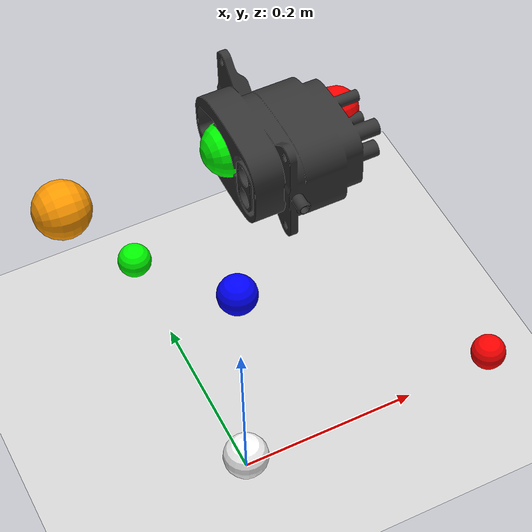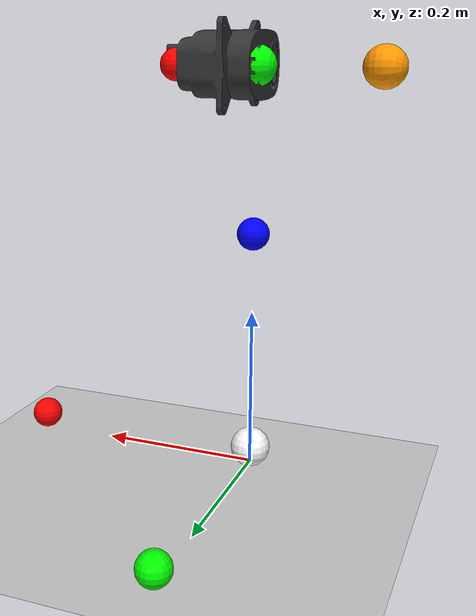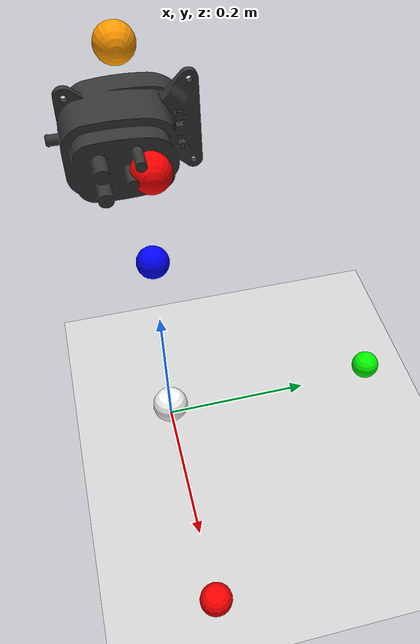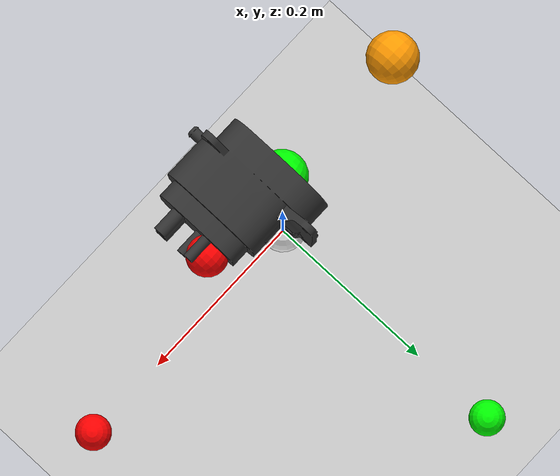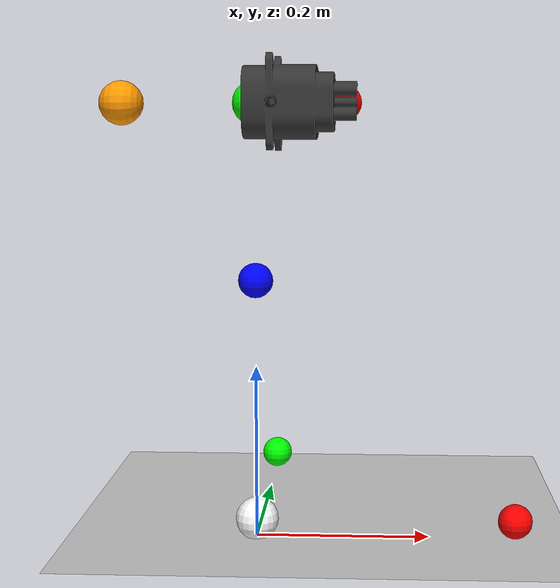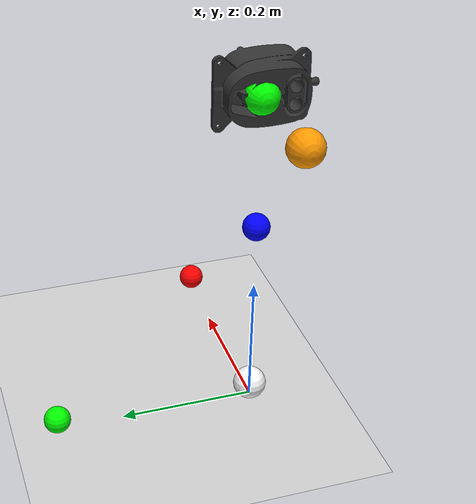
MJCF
<mujoco model="port_only_scene">
    <compiler angle="degree"/>

    <option timestep="0.002" gravity="0 0 -9.81"/>

    <asset>
        <mesh name="charge_port_mesh" file="assets/Port.obj" scale="0.001 0.001 0.001"/>
    </asset>

    <visual>
        <headlight
            ambient="0.3 0.3 0.3"
            diffuse="0.6 0.6 0.6"
            specular="0.1 0.1 0.1"
        />
    </visual>

    <worldbody>
        <light
            name="main_light"
            pos="0 0 3"
            dir="0 0 -1"
            directional="true"
            diffuse="0.8 0.8 0.8"
            ambient="0.2 0.2 0.2"
        />

        <geom
            name="floor"
            type="plane"
            pos="0 0 0"
            size="3 3 0.1"
            rgba="0.8 0.8 0.8 1"
        />

        <!-- 월드 좌표축 확인용 -->
        <site name="world_origin"
              pos="0 0 0.02"
              size="0.025"
              rgba="1 1 1 1"/>

        <site name="world_x"
              pos="0.3 0 0.02"
              size="0.02"
              rgba="1 0 0 1"/>

        <site name="world_y"
              pos="0 0.3 0.02"
              size="0.02"
              rgba="0 1 0 1"/>

        <site name="world_z"
              pos="0 0 0.3"
              size="0.02"
              rgba="0 0 1 1"/>

        <!-- 충전구 단독 테스트 -->
        <body name="charge_port_frame" pos="0 0 0.5" euler="0 -90 0">
            <geom name="charge_port_visual"
                  type="mesh"
                  mesh="charge_port_mesh"
                  pos="0 0 0"
                  euler="0 0 0"
                  contype="0"
                  conaffinity="0"
                  rgba="0.2 0.2 0.2 1"/>

            <site name="charge_port_center"
                  pos="0 0 0"
                  size="0.025"
                  rgba="0 1 0 1"/>

            <site name="charge_port_axis_site"
                  pos="0 0 -0.10"
                  size="0.02"
                  rgba="1 0 0 1"/>

            <site name="charge_port_approach"
                  pos="0 0 0.15"
                  size="0.025"
                  rgba="1 0.6 0 1"/>

            <site name="charge_port_insert"
                  pos="0 0 -0.02"
                  size="0.02"
                  rgba="0 0 1 1"/>
        </body>

        <camera
            name="overview_camera"
            pos="1.2 -1.5 1.0"
            euler="60 0 40"
            fovy="45"
        />
    </worldbody>
</mujoco>
